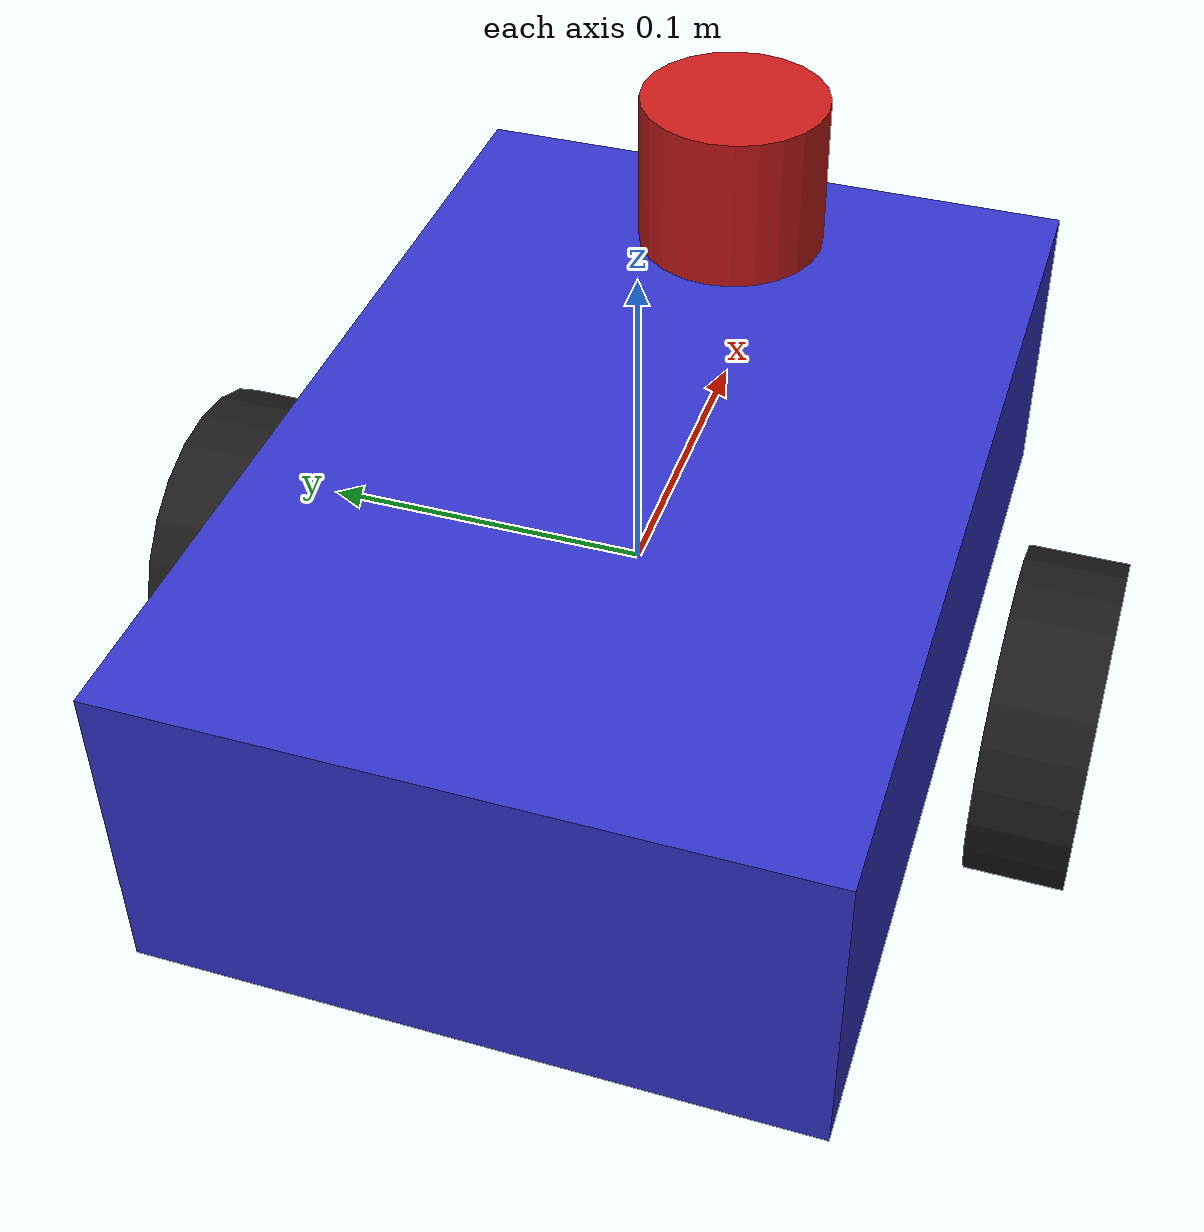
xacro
<?xml version="1.0"?>
<robot name="my_robot" xmlns:xacro="http://www.ros.org/wiki/xacro">

  <!-- 底盘 -->
  <link name="base_link">
    <visual>
      <geometry>
        <box size="0.3 0.2 0.1"/>
      </geometry>
      <material name="blue">
        <color rgba="0.2 0.2 0.8 1"/>
      </material>
    </visual>
    <collision>
      <geometry>
        <box size="0.3 0.2 0.1"/>
      </geometry>
    </collision>
    <inertial>
      <mass value="2.0"/>
      <inertia ixx="0.01" ixy="0.0" ixz="0.0" iyy="0.02" iyz="0.0" izz="0.02"/>
    </inertial>
  </link>

  <!-- 左轮 -->
  <link name="left_wheel">
    <visual>
      <geometry>
        <cylinder radius="0.05" length="0.03"/>
      </geometry>
      <origin rpy="1.5708 0 0"/>
      <material name="black">
        <color rgba="0.1 0.1 0.1 1"/>
      </material>
    </visual>
    <collision>
      <geometry>
        <cylinder radius="0.05" length="0.03"/>
      </geometry>
      <origin rpy="1.5708 0 0"/>
    </collision>
    <inertial>
      <mass value="0.2"/>
      <inertia ixx="0.001" ixy="0.0" ixz="0.0" iyy="0.001" iyz="0.0" izz="0.001"/>
    </inertial>
  </link>

  <joint name="left_wheel_joint" type="continuous">
    <parent link="base_link"/>
    <child link="left_wheel"/>
    <origin xyz="0 0.13 -0.03" rpy="0 0 0"/>
    <axis xyz="0 1 0"/>
  </joint>

  <!-- 右轮 -->
  <link name="right_wheel">
    <visual>
      <geometry>
        <cylinder radius="0.05" length="0.03"/>
      </geometry>
      <origin rpy="1.5708 0 0"/>
      <material name="black">
        <color rgba="0.1 0.1 0.1 1"/>
      </material>
    </visual>
    <collision>
      <geometry>
        <cylinder radius="0.05" length="0.03"/>
      </geometry>
      <origin rpy="1.5708 0 0"/>
    </collision>
    <inertial>
      <mass value="0.2"/>
      <inertia ixx="0.001" ixy="0.0" ixz="0.0" iyy="0.001" iyz="0.0" izz="0.001"/>
    </inertial>
  </link>

  <joint name="right_wheel_joint" type="continuous">
    <parent link="base_link"/>
    <child link="right_wheel"/>
    <origin xyz="0 -0.13 -0.03" rpy="0 0 0"/>
    <axis xyz="0 1 0"/>
  </joint>

  <!-- 万向轮（简化为一个球体支撑，防止机器人翘头） -->
  <link name="caster_wheel">
    <visual>
      <geometry>
        <sphere radius="0.03"/>
      </geometry>
    </visual>
    <collision>
      <geometry>
        <sphere radius="0.03"/>
      </geometry>
    </collision>
    <inertial>
      <mass value="0.1"/>
      <inertia ixx="0.0001" ixy="0.0" ixz="0.0" iyy="0.0001" iyz="0.0" izz="0.0001"/>
    </inertial>
  </link>

  <joint name="caster_wheel_joint" type="fixed">
    <parent link="base_link"/>
    <child link="caster_wheel"/>
    <origin xyz="0.12 0 -0.07" rpy="0 0 0"/>
  </joint>

<!-- Gazebo差速驱动插件 -->
  <gazebo>
    <plugin filename="gz-sim-diff-drive-system" name="gz::sim::systems::DiffDrive">
      <left_joint>left_wheel_joint</left_joint>
      <right_joint>right_wheel_joint</right_joint>
      <wheel_separation>0.26</wheel_separation>
      <wheel_radius>0.05</wheel_radius>
      <odom_publish_frequency>30</odom_publish_frequency>
      <topic>cmd_vel</topic>
      <odom_topic>odom</odom_topic>
      <tf_topic>tf</tf_topic>
      <frame_id>odom</frame_id>
      <child_frame_id>base_link</child_frame_id>
    </plugin>
    <plugin filename="gz-sim-joint-state-publisher-system" name="gz::sim::systems::JointStatePublisher">
    </plugin>
  </gazebo>

<!-- 激光雷达link -->
  <link name="lidar_link">
    <visual>
      <geometry>
        <cylinder radius="0.03" length="0.05"/>
      </geometry>
      <material name="red">
        <color rgba="0.8 0.1 0.1 1"/>
      </material>
    </visual>
    <collision>
      <geometry>
        <cylinder radius="0.03" length="0.05"/>
      </geometry>
    </collision>
    <inertial>
      <mass value="0.1"/>
      <inertia ixx="0.0001" ixy="0.0" ixz="0.0" iyy="0.0001" iyz="0.0" izz="0.0001"/>
    </inertial>
  </link>

  <joint name="lidar_joint" type="fixed">
    <parent link="base_link"/>
    <child link="lidar_link"/>
    <origin xyz="0.1 0 0.08" rpy="0 0 0"/>
  </joint>

  <!-- 激光雷达Gazebo传感器插件 -->
  <gazebo reference="lidar_link">
    <sensor name="lidar" type="gpu_lidar">
      <pose>0 0 0 0 0 0</pose>
      <topic>scan</topic>
      <update_rate>10</update_rate>
      <lidar>
        <scan>
          <horizontal>
            <samples>360</samples>
            <resolution>1</resolution>
            <min_angle>-3.14159</min_angle>
            <max_angle>3.14159</max_angle>
          </horizontal>
        </scan>
        <range>
          <min>0.12</min>
          <max>10.0</max>
          <resolution>0.01</resolution>
        </range>
      </lidar>
      <always_on>true</always_on>
      <visualize>true</visualize>
    </sensor>
  </gazebo>

</robot>
